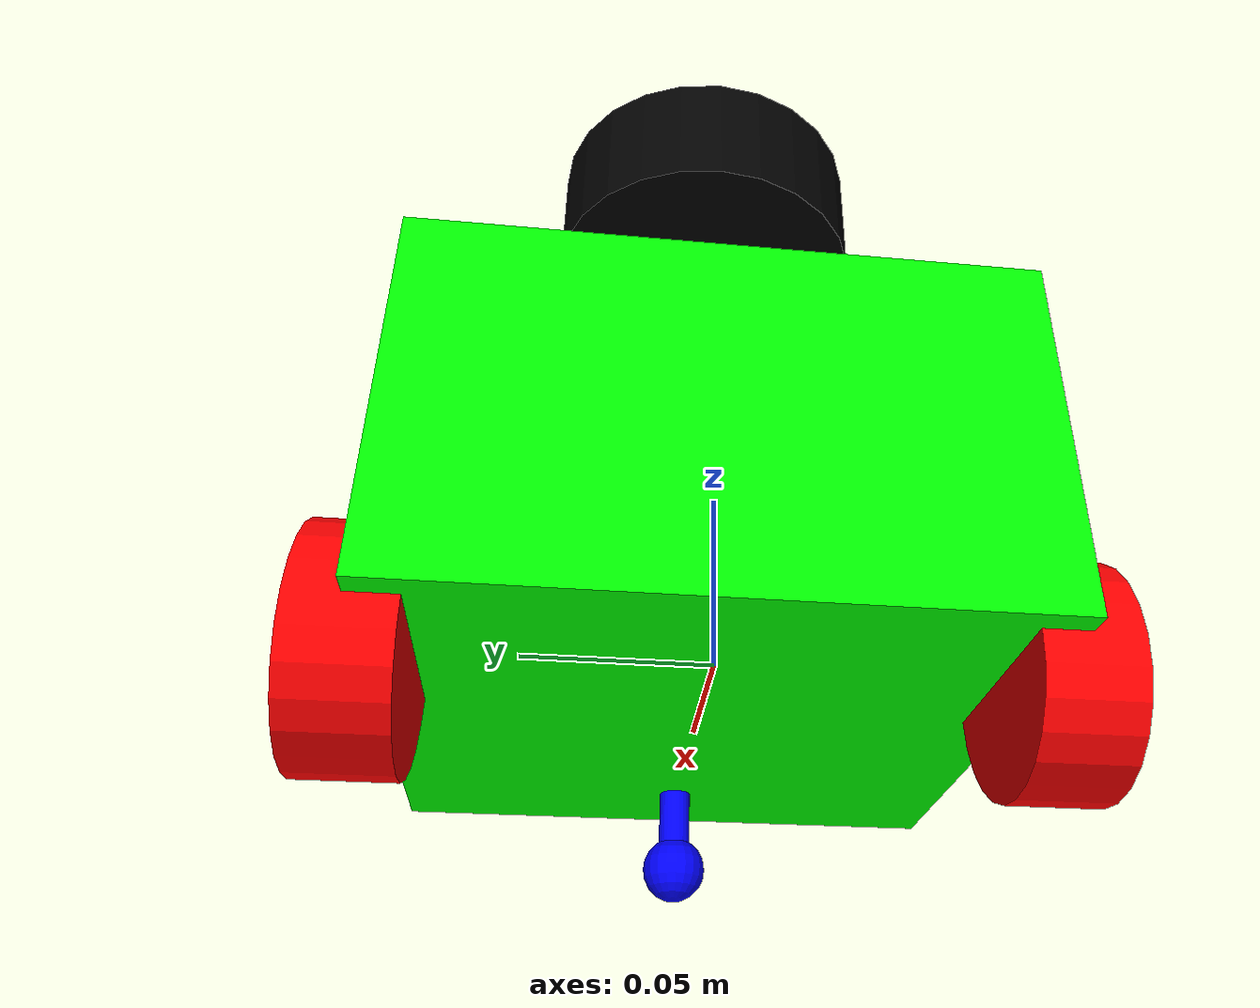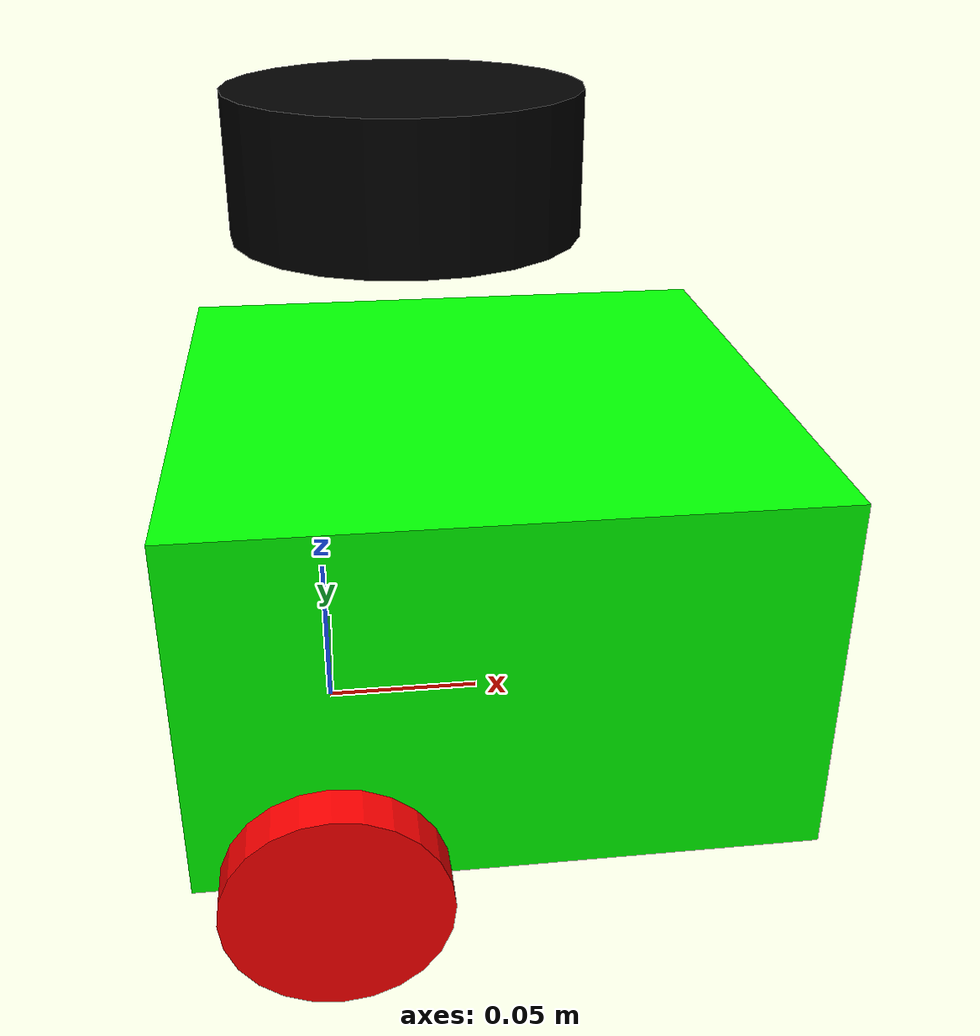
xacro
<?xml version="1.0"?>

<robot xmlns:xacro="http://www.ros.org/wiki/xacro" name="diff_bot">
    <xacro:include filename="inertial_macros.xacro"/>
    <xacro:include filename="properties.xacro"/>
    <xacro:include filename="chassis.xacro"/>
    <xacro:include filename="wheel.xacro"/>
    <xacro:include filename="caster_wheel.xacro"/>
    <xacro:include filename="gazebo_control.xacro"/>
    <xacro:include filename="control.xacro"/>
    <xacro:include filename="depth_camera.xacro"/>

    <link name= "base_link"/>

    <link name="camera_link"/>

    <joint name="camera_link" type="fixed">
        <parent link="base_link"/>
        <child link="camera_link"/>
    </joint>

</robot>

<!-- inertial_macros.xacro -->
<robot xmlns:xacro="http://www.ros.org/wiki/xacro">

    <xacro:macro name="inertial_box" params="mass x y z *origin">
    <inertial>
        <xacro:insert_block name="origin"/>
        <mass value="${mass}" />
        <inertia ixx="${(1/12) * mass * (y*y+z*z)}" ixy="0.0" ixz="0.0"
                iyy="${(1/12) * mass * (x*x+z*z)}" iyz="0.0"
                izz="${(1/12) * mass * (x*x+y*y)}" />
    </inertial>
</xacro:macro>

<xacro:macro name="inertial_sphere" params="mass radius *origin">
    <inertial>
    <xacro:insert_block name="origin"/>
    <mass value="${mass}" />
    <inertia ixx="${(2/5) * mass * (radius * radius)}" ixy="0.0" ixz="0.0"
            iyy="${(2/5) * mass * (radius * radius)}" iyz="0.0"
            izz="${(2/5) * mass * (radius * radius)}" />
        </inertial>
    </xacro:macro>

    <xacro:macro name="inertial_cylinder" params="mass length radius *origin">
        <inertial>
        <xacro:insert_block name="origin"/>
        <mass value="${mass}" />
        <inertia ixx="${(1/12) * mass * (3* radius* radius + length*length)}" ixy="0.0" ixz="0.0"
                iyy="${(1/12) * mass * (3 * radius * radius + length * length)}"
                iyz="0.0" izz="${(1/2) * mass * (radius* radius)}" />
        </inertial>
        </xacro:macro>

</robot>

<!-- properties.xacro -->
<robot xmlns:xacro="http://www.ros.org/wiki/xacro">

    <xacro:property name="chassis_length" value="0.18"/>
    <xacro:property name="chassis_width" value="0.18"/>
    <xacro:property name="chassis_height" value="0.11"/>
    <xacro:property name="chassis_mass" value="1.0"/>

    <xacro:property name="wheel_offset_x" value="0.04"/>
    <xacro:property name="wheel_offset_y" value="0.09"/>
    <xacro:property name="wheel_offset_z" value="-0.025"/>
    <xacro:property name="wheel_thickness" value= "0.027"/>
    <xacro:property name="wheel_radius" value="0.0325"/>
    <xacro:property name="wheel_mass" value="0.037"/>

    <xacro:property name= "caster_wheel_radius" value="0.01"/>
    <xacro:property name="caster_wheel_mass" value="0.01"/>
    <xacro:property name="caster_wheel_offset_x" value="0.150"/>
    <xacro:property name="caster_wheel_offset_z" value="-0.025"/>

    <material name="white">
        <color rgba="1 1 1 1"/>
        </material>
        <material name="red">
        <color rgba="1 0 0 1"/> </material>
        <material name="green">
        <color rgba="0 1 0 1"/> </material>
        <material name="blue">
        <color rgba="0 0 1 1"/>
        </material>
        <material name="black">
        <color rgba="0 0 0 1"/> </material>
        </robot>

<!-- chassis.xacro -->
<robot xmlns:xacro="http://www.ros.org/wiki/xacro">
    <link name="chassis_link">
        <visual>
            <material name="green">

            </material>
            <geometry>
                <box size="${chassis_length} ${chassis_width} ${chassis_height}"/>
            </geometry>
            <origin xyz="0.09 0.0 0.055" rpy="0.0 0.0 0.0"/>
        </visual>

        <collision>
            <geometry>
                <box size="${chassis_length} ${chassis_width} ${chassis_height}"/>
            </geometry>
            <origin xyz="0.09 0.0 0.055" rpy="0.0 0.0 0.0"/>
        </collision>

        <xacro:inertial_box mass="${chassis_mass}" x="${chassis_length}" y="${chassis_width}" z="${chassis_height}">
        <origin xyz="0.09 0.0 0.055" rpy="0.0 0.0 0.0"/>
    </xacro:inertial_box>
    </link>

    <joint name="chassis_joint" type="fixed">
        <parent link="base_link"/>
        <child link="chassis_link"/>
        <origin xyz="-0.04 0.0 0.0" rpy="0.0 0.0 0.0"/>

    </joint>

</robot>

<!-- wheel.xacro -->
<robot xmlns:xacro="http://www.ros.org/wiki/xacro">

<!-- Wheel Link Macro -->
<xacro:macro name="wheel_link" params="link_name">
    <link name="${link_name}">
        <visual>
            <geometry>
                <cylinder radius="${wheel_radius}" length="${wheel_thickness}"/>
            </geometry>
            <material name="red"/>
        </visual>
        <collision>
            <geometry>
                <sphere radius="${wheel_radius}"/>
            </geometry>
        </collision>
        <xacro:inertial_cylinder mass="${wheel_mass}" length="${wheel_thickness}" radius="${wheel_radius}">
        <origin xyz="0 0 0" rpy="0 0 0"/>
    </xacro:inertial_cylinder>
    </link>
</xacro:macro>

<xacro:macro name="wheel_joint" params="joint_name wheel_name y_offset ">
    <joint name="${joint_name}" type="continuous">
        <origin xyz="0 ${y_offset} 0" rpy="${-pi/2} 0.0 0.0"/>
        <parent link="base_link"/>
        <child link="${wheel_name}"/>
        <axis xyz="0.0 0.0 1"/>
    </joint>
</xacro:macro>

<!-- Left Wheel Link -->
<xacro:wheel_link link_name="left_wheel_link" />

<!-- Left Wheel_Joint -->
<xacro:wheel_joint joint_name="left_wheel_joint" wheel_name="left_wheel_link" y_offset="${wheel_offset_y}"/>

<!-- Right Wheel Link -->
<xacro:wheel_link link_name="right_wheel_link" />

<!---> Right Wheel Joint -->
<xacro:wheel_joint joint_name="right_wheel_joint" wheel_name="right_wheel_link" y_offset="${-wheel_offset_y}"/>
</robot>

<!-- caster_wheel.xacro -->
<robot xmlns:xacro="http://www.ros.org/wiki/xacro">

<link name="caster_wheel_link">
    <visual>
        <origin xyz="0.0 0.0 0.0" rpy="0.0 0.0 0.0"/>
        <geometry>
            <sphere radius="${caster_wheel_radius}"/>
        </geometry>
<material name="blue"/>
</visual>
<collision>
    <origin xyz="0.0 0.0 0.0" rpy="0.0 0.0 0.0"/>
    <geometry>
        <sphere radius="${caster_wheel_radius}"/>
    </geometry>
</collision>

    <xacro:inertial_sphere mass="${caster_wheel_mass}" radius="${caster_wheel_radius}">
        <origin xyz="0.0 0.0 0.0" rpy="0.0 0.0 0.0"/>
    </xacro:inertial_sphere>
</link>

<!-- Caster Wheel Joit -->
<joint name="caster_wheel_join" type="fixed">
    <origin xyz="${caster_wheel_offset_x} 0.0 ${caster_wheel_offset_z}" rpy="0.0 0.0 0.0"/>
    <parent link="chassis_link"/>
    <child link="caster_wheel_link"/>
    </joint>

    <!-- Caster Holder (Only for visuals) -->
<link name="caster_holder">
    <visual>
        <geometry>
            <cylinder radius="${caster_wheel_radius/2}" length="${caster_wheel_offset_z*2}"/>
        </geometry>
    <material name="blue"/>
    </visual>
    </link>
    <joint name="holder_joint" type="fixed">
        <origin xyz="${caster_wheel_offset_x} 0.0 0.0" rpy="0.0 0.0 0.0"/>
        <parent link="chassis_link" />
        <child link="caster_holder"/>
    </joint>

    <gazebo reference = "caster_wheel_link">
        <mu1 value="0.001"/>
        <mu2 value="0.001"/>

    </gazebo>

    </robot>

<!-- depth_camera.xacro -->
<robot xmlns:xacro="http://www.ros.org/wiki/xacro">

    <link name="camera_frame">
        <visual>
            <geometry>
                <cylinder radius="0.05" length="0.04"/>
            </geometry>
            <material name="black"/>
        </visual>
    </link>

<joint name="camera_joint" type="fixed">
    <origin xyz="0.07 0.0 0.18" rpy="0.0 0.0 0.0"/>
    <parent link="chassis_link"/>
    <child link="camera_frame" />
</joint>

<joint name="camera_optical_joint" type="fixed">
    <origin xyz="0 0 0" rpy="-1.5708 0 -1.5708"/>
    <parent link="camera_frame"/>
    <child link="camera_frame_optical" />
</joint>

<link name="camera_frame_optical"></link>

<!-- Lidar Plugin -->
    <gazebo reference="camera_frame">
        <material>Gazebo/Black</material>

        <sensor name="camera" type="depth">
            <pose> 0 0 0 0 0 0 </pose>
            <visualize>true</visualize>
            <update_rate>10</update_rate>
            <camera>
                <horizontal_fov>1.089</horizontal_fov>
                <image>
                    <format>R8G8R8</format>
                    <width>640</width>
                    <height>480</height>
                </image>
                <clip>
                    <near>0.05</near>
                    <far>8.0</far>
                </clip>
            </camera>
            <plugin name="camera_controller" filename="libgazebo_ros_camera.so">
                <frame_name>camera_frame_optical</frame_name>
                <min_depth>0.1</min_depth>
                <max_depth>100.0</max_depth>

             </plugin>
        </sensor>
    </gazebo>
</robot>
